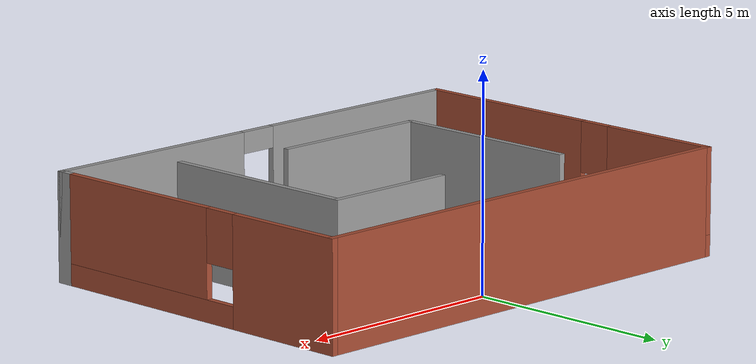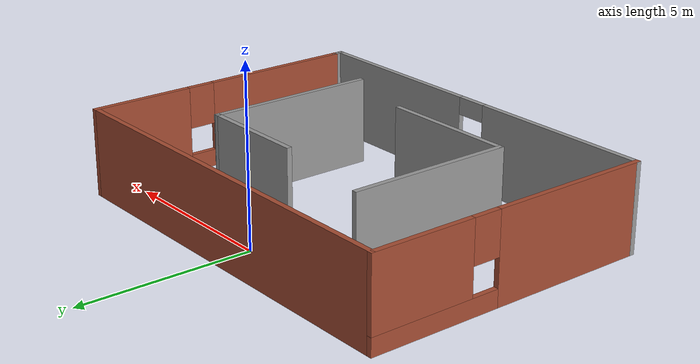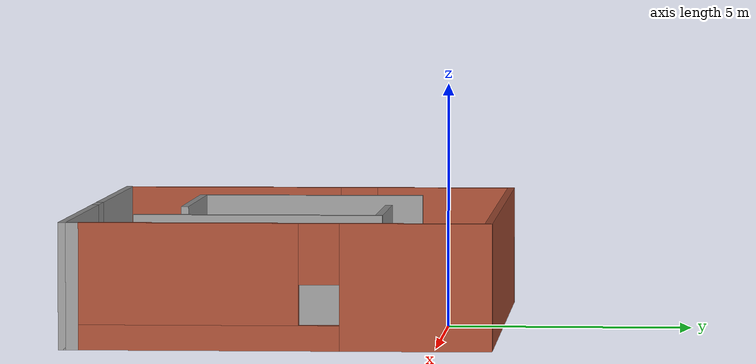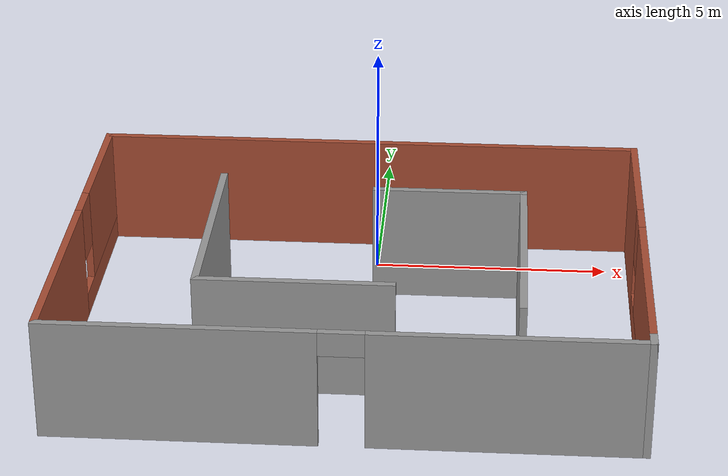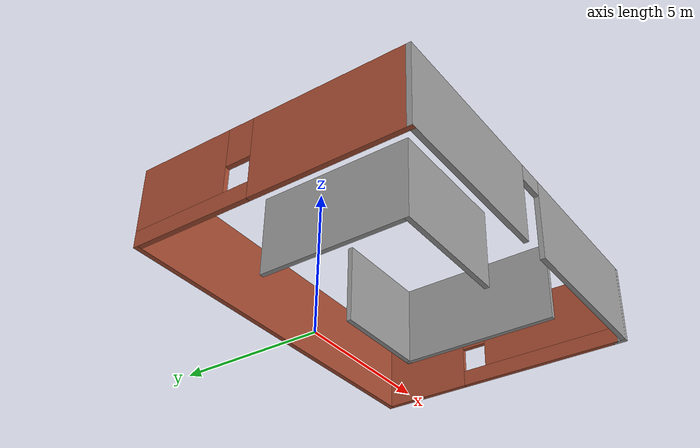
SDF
<?xml version='1.0'?>
<sdf version='1.6'>
  <model name='small_world'>
    <pose frame=''>-0.242833 -3.11705 0 0 -0 0</pose>
    <link name='Wall_1'>
      <pose frame=''>-5.8 0 0 0 -0 1.5708</pose>
      <visual name='Wall_1_Visual_0'>
        <pose frame=''>-1.89126 0 1.25 0 -0 0</pose>
        <geometry>
          <box>
            <size>4.71747 0.15 2.5</size>
          </box>
        </geometry>
        <material>
          <script>
            <uri>file://media/materials/scripts/gazebo.material</uri>
            <name>Gazebo/Bricks</name>
          </script>
          <ambient>1 1 1 1</ambient>
        </material>
        <meta>
          <layer>0</layer>
        </meta>
      </visual>
      <collision name='Wall_1_Collision_0'>
        <geometry>
          <box>
            <size>4.71747 0.15 2.5</size>
          </box>
        </geometry>
        <pose frame=''>-1.89126 0 1.25 0 -0 0</pose>
      </collision>
      <visual name='Wall_1_Visual_1'>
        <pose frame=''>2.35874 0 0.25 0 -0 0</pose>
        <geometry>
          <box>
            <size>3.78253 0.15 0.5</size>
          </box>
        </geometry>
        <material>
          <script>
            <uri>file://media/materials/scripts/gazebo.material</uri>
            <name>Gazebo/Bricks</name>
          </script>
          <ambient>1 1 1 1</ambient>
        </material>
        <meta>
          <layer>0</layer>
        </meta>
      </visual>
      <collision name='Wall_1_Collision_1'>
        <geometry>
          <box>
            <size>3.78253 0.15 0.5</size>
          </box>
        </geometry>
        <pose frame=''>2.35874 0 0.25 0 -0 0</pose>
      </collision>
      <visual name='Wall_1_Visual_2'>
        <pose frame=''>2.75874 0 1.5 0 -0 0</pose>
        <geometry>
          <box>
            <size>2.98253 0.15 2</size>
          </box>
        </geometry>
        <material>
          <script>
            <uri>file://media/materials/scripts/gazebo.material</uri>
            <name>Gazebo/Bricks</name>
          </script>
          <ambient>1 1 1 1</ambient>
        </material>
        <meta>
          <layer>0</layer>
        </meta>
      </visual>
      <collision name='Wall_1_Collision_2'>
        <geometry>
          <box>
            <size>2.98253 0.15 2</size>
          </box>
        </geometry>
        <pose frame=''>2.75874 0 1.5 0 -0 0</pose>
      </collision>
      <visual name='Wall_1_Visual_3'>
        <pose frame=''>0.867472 0 1.9 0 -0 0</pose>
        <geometry>
          <box>
            <size>0.8 0.15 1.2</size>
          </box>
        </geometry>
        <material>
          <script>
            <uri>file://media/materials/scripts/gazebo.material</uri>
            <name>Gazebo/Bricks</name>
          </script>
          <ambient>1 1 1 1</ambient>
        </material>
        <meta>
          <layer>0</layer>
        </meta>
      </visual>
      <collision name='Wall_1_Collision_3'>
        <geometry>
          <box>
            <size>0.8 0.15 1.2</size>
          </box>
        </geometry>
        <pose frame=''>0.867472 0 1.9 0 -0 0</pose>
      </collision>
    </link>
    <link name='Wall_14'>
      <pose frame=''>0 -4.175 0 0 -0 0</pose>
      <visual name='Wall_14_Visual_0'>
        <pose frame=''>-3.16341 0 1.25 0 -0 0</pose>
        <geometry>
          <box>
            <size>5.42318 0.15 2.5</size>
          </box>
        </geometry>
        <material>
          <script>
            <uri>file://media/materials/scripts/gazebo.material</uri>
            <name>Gazebo/Grey</name>
          </script>
          <ambient>1 1 1 1</ambient>
        </material>
        <meta>
          <layer>0</layer>
        </meta>
      </visual>
      <collision name='Wall_14_Collision_0'>
        <geometry>
          <box>
            <size>5.42318 0.15 2.5</size>
          </box>
        </geometry>
        <pose frame=''>-3.16341 0 1.25 0 -0 0</pose>
      </collision>
      <visual name='Wall_14_Visual_1'>
        <pose frame=''>3.16159 0 1.25 0 -0 0</pose>
        <geometry>
          <box>
            <size>5.42682 0.15 2.5</size>
          </box>
        </geometry>
        <material>
          <script>
            <uri>file://media/materials/scripts/gazebo.material</uri>
            <name>Gazebo/Grey</name>
          </script>
          <ambient>1 1 1 1</ambient>
        </material>
        <meta>
          <layer>0</layer>
        </meta>
      </visual>
      <collision name='Wall_14_Collision_1'>
        <geometry>
          <box>
            <size>5.42682 0.15 2.5</size>
          </box>
        </geometry>
        <pose frame=''>3.16159 0 1.25 0 -0 0</pose>
      </collision>
      <visual name='Wall_14_Visual_2'>
        <pose frame=''>-0.00182 0 2.25 0 -0 0</pose>
        <geometry>
          <box>
            <size>0.9 0.15 0.5</size>
          </box>
        </geometry>
        <material>
          <script>
            <uri>file://media/materials/scripts/gazebo.material</uri>
            <name>Gazebo/Grey</name>
          </script>
          <ambient>1 1 1 1</ambient>
        </material>
        <meta>
          <layer>0</layer>
        </meta>
      </visual>
      <collision name='Wall_14_Collision_2'>
        <geometry>
          <box>
            <size>0.9 0.15 0.5</size>
          </box>
        </geometry>
        <pose frame=''>-0.00182 0 2.25 0 -0 0</pose>
      </collision>
    </link>
    <link name='Wall_15'>
      <collision name='Wall_15_Collision'>
        <geometry>
          <box>
            <size>0.4 0.15 2.5</size>
          </box>
        </geometry>
        <pose frame=''>0 0 1.25 0 -0 0</pose>
      </collision>
      <visual name='Wall_15_Visual'>
        <pose frame=''>0 0 1.25 0 -0 0</pose>
        <geometry>
          <box>
            <size>0.4 0.15 2.5</size>
          </box>
        </geometry>
        <material>
          <script>
            <uri>file://media/materials/scripts/gazebo.material</uri>
            <name>Gazebo/Grey</name>
          </script>
          <ambient>1 1 1 1</ambient>
        </material>
        <meta>
          <layer>0</layer>
        </meta>
      </visual>
      <pose frame=''>5.8 -4.05 0 0 -0 1.5708</pose>
    </link>
    <link name='Wall_17'>
      <collision name='Wall_17_Collision'>
        <geometry>
          <box>
            <size>4.75 0.15 2.5</size>
          </box>
        </geometry>
        <pose frame=''>0 0 1.25 0 -0 0</pose>
      </collision>
      <visual name='Wall_17_Visual'>
        <pose frame=''>0 0 1.25 0 -0 0</pose>
        <geometry>
          <box>
            <size>4.75 0.15 2.5</size>
          </box>
        </geometry>
        <material>
          <script>
            <uri>file://media/materials/scripts/gazebo.material</uri>
            <name>Gazebo/Grey</name>
          </script>
          <ambient>1 1 1 1</ambient>
        </material>
        <meta>
          <layer>0</layer>
        </meta>
      </visual>
      <pose frame=''>-3.00764 0.033564 0 0 0 -1.5708</pose>
    </link>
    <link name='Wall_18'>
      <collision name='Wall_18_Collision'>
        <geometry>
          <box>
            <size>4 0.15 2.5</size>
          </box>
        </geometry>
        <pose frame=''>0 0 1.25 0 -0 0</pose>
      </collision>
      <visual name='Wall_18_Visual'>
        <pose frame=''>0 0 1.25 0 -0 0</pose>
        <geometry>
          <box>
            <size>4 0.15 2.5</size>
          </box>
        </geometry>
        <material>
          <script>
            <uri>file://media/materials/scripts/gazebo.material</uri>
            <name>Gazebo/Grey</name>
          </script>
          <ambient>1 1 1 1</ambient>
        </material>
        <meta>
          <layer>0</layer>
        </meta>
      </visual>
      <pose frame=''>-1.08264 -2.26644 0 0 -0 0</pose>
    </link>
    <link name='Wall_2'>
      <collision name='Wall_2_Collision'>
        <geometry>
          <box>
            <size>11.75 0.15 2.5</size>
          </box>
        </geometry>
        <pose frame=''>0 0 1.25 0 -0 0</pose>
      </collision>
      <visual name='Wall_2_Visual'>
        <pose frame=''>0 0 1.25 0 -0 0</pose>
        <geometry>
          <box>
            <size>11.75 0.15 2.5</size>
          </box>
        </geometry>
        <material>
          <script>
            <uri>file://media/materials/scripts/gazebo.material</uri>
            <name>Gazebo/Bricks</name>
          </script>
          <ambient>1 1 1 1</ambient>
        </material>
        <meta>
          <layer>0</layer>
        </meta>
      </visual>
      <pose frame=''>0 4.175 0 0 -0 0</pose>
    </link>
    <link name='Wall_20'>
      <collision name='Wall_20_Collision'>
        <geometry>
          <box>
            <size>3.25 0.15 2.5</size>
          </box>
        </geometry>
        <pose frame=''>0 0 1.25 0 -0 0</pose>
      </collision>
      <visual name='Wall_20_Visual'>
        <pose frame=''>0 0 1.25 0 -0 0</pose>
        <geometry>
          <box>
            <size>3.25 0.15 2.5</size>
          </box>
        </geometry>
        <material>
          <script>
            <uri>file://media/materials/scripts/gazebo.material</uri>
            <name>Gazebo/Grey</name>
          </script>
          <ambient>1 1 1 1</ambient>
        </material>
        <meta>
          <layer>0</layer>
        </meta>
      </visual>
      <pose frame=''>1.84078 1.88136 0 0 -0 0</pose>
    </link>
    <link name='Wall_23'>
      <collision name='Wall_23_Collision'>
        <geometry>
          <box>
            <size>5 0.15 2.5</size>
          </box>
        </geometry>
        <pose frame=''>0 0 1.25 0 -0 0</pose>
      </collision>
      <visual name='Wall_23_Visual'>
        <pose frame=''>0 0 1.25 0 -0 0</pose>
        <geometry>
          <box>
            <size>5 0.15 2.5</size>
          </box>
        </geometry>
        <material>
          <script>
            <uri>file://media/materials/scripts/gazebo.material</uri>
            <name>Gazebo/Grey</name>
          </script>
          <ambient>1 1 1 1</ambient>
        </material>
        <meta>
          <layer>0</layer>
        </meta>
      </visual>
      <pose frame=''>3.39078 -0.54364 0 0 0 -1.5708</pose>
    </link>
    <link name='Wall_3'>
      <pose frame=''>5.8 0.125 0 0 0 -1.5708</pose>
      <visual name='Wall_3_Visual_0'>
        <pose frame=''>-2.63374 0 1.25 0 -0 0</pose>
        <geometry>
          <box>
            <size>2.98253 0.15 2.5</size>
          </box>
        </geometry>
        <material>
          <script>
            <uri>file://media/materials/scripts/gazebo.material</uri>
            <name>Gazebo/Bricks</name>
          </script>
          <ambient>1 1 1 1</ambient>
        </material>
        <meta>
          <layer>0</layer>
        </meta>
      </visual>
      <collision name='Wall_3_Collision_0'>
        <geometry>
          <box>
            <size>2.98253 0.15 2.5</size>
          </box>
        </geometry>
        <pose frame=''>-2.63374 0 1.25 0 -0 0</pose>
      </collision>
      <visual name='Wall_3_Visual_1'>
        <pose frame=''>1.49126 0 0.25 0 -0 0</pose>
        <geometry>
          <box>
            <size>5.26747 0.15 0.5</size>
          </box>
        </geometry>
        <material>
          <script>
            <uri>file://media/materials/scripts/gazebo.material</uri>
            <name>Gazebo/Bricks</name>
          </script>
          <ambient>1 1 1 1</ambient>
        </material>
        <meta>
          <layer>0</layer>
        </meta>
      </visual>
      <collision name='Wall_3_Collision_1'>
        <geometry>
          <box>
            <size>5.26747 0.15 0.5</size>
          </box>
        </geometry>
        <pose frame=''>1.49126 0 0.25 0 -0 0</pose>
      </collision>
      <visual name='Wall_3_Visual_2'>
        <pose frame=''>1.89126 0 1.5 0 -0 0</pose>
        <geometry>
          <box>
            <size>4.46747 0.15 2</size>
          </box>
        </geometry>
        <material>
          <script>
            <uri>file://media/materials/scripts/gazebo.material</uri>
            <name>Gazebo/Bricks</name>
          </script>
          <ambient>1 1 1 1</ambient>
        </material>
        <meta>
          <layer>0</layer>
        </meta>
      </visual>
      <collision name='Wall_3_Collision_2'>
        <geometry>
          <box>
            <size>4.46747 0.15 2</size>
          </box>
        </geometry>
        <pose frame=''>1.89126 0 1.5 0 -0 0</pose>
      </collision>
      <visual name='Wall_3_Visual_3'>
        <pose frame=''>-0.742472 0 1.9 0 -0 0</pose>
        <geometry>
          <box>
            <size>0.8 0.15 1.2</size>
          </box>
        </geometry>
        <material>
          <script>
            <uri>file://media/materials/scripts/gazebo.material</uri>
            <name>Gazebo/Bricks</name>
          </script>
          <ambient>1 1 1 1</ambient>
        </material>
        <meta>
          <layer>0</layer>
        </meta>
      </visual>
      <collision name='Wall_3_Collision_3'>
        <geometry>
          <box>
            <size>0.8 0.15 1.2</size>
          </box>
        </geometry>
        <pose frame=''>-0.742472 0 1.9 0 -0 0</pose>
      </collision>
    </link>
    <static>1</static>
  </model>
</sdf>
